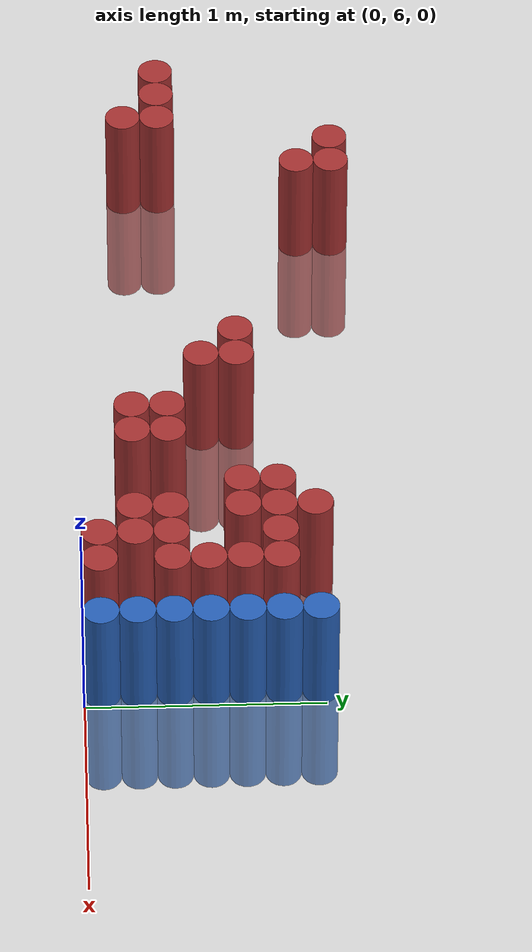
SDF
<sdf version="1.6">
 <world name="default">
  <model name="ground_plane">
   <static>1</static>
   <link name="link">
    <collision name="collision">
     <geometry><plane><normal>0 0 1</normal><size>100 100</size></plane></geometry>
     <surface><friction><ode><mu>100</mu><mu2>50</mu2></ode></friction></surface>
    </collision>
    <visual name="visual">
     <cast_shadows>0</cast_shadows>
     <geometry><plane><normal>0 0 1</normal><size>100 100</size></plane></geometry>
     <material>
      <script><uri>file://media/materials/scripts/gazebo.material</uri><name>Gazebo/Grey</name></script>
     </material>
    </visual>
   </link>
  </model>
  <model name="unit_cylinder_186">
   <static>1</static>
   <pose>-3.375000 6.375000 0.000000 0.000000 0.000000 0.000000</pose>
   <link name="link">
    <inertial>
     <mass>1</mass>
     <inertia><ixx>0.145833</ixx><ixy>0</ixy><ixz>0</ixz><iyy>0.145833</iyy><iyz>0</iyz><izz>0.125</izz></inertia>
    </inertial>
    <collision name="collision">
     <geometry><cylinder><radius>0.075000</radius><length>1</length></cylinder></geometry>
    </collision>
    <visual name="visual">
     <geometry><cylinder><radius>0.075000</radius><length>1</length></cylinder></geometry>
     <material>
      <ambient>0.648000 0.192000 0.192000 1</ambient>
      <diffuse>0.648000 0.192000 0.192000 1</diffuse>
     </material>
     <material>
      <script><name>Gazebo/Grey</name><uri>file://media/materials/scripts/gazebo.material</uri></script>
     </material>
    </visual>
    <sensor name="sensor_contact" type="contact"><contact><collision>collision</collision></contact></sensor>
   </link>
   <plugin filename="gz-sim-touchplugin-system" name="gz::sim::systems::TouchPlugin">
    <target>robot</target>
    <namespace>robot</namespace>
    <time>0.001</time>
    <enabled>true</enabled>
   </plugin>
  </model>
  <model name="unit_cylinder_189">
   <static>1</static>
   <pose>-3.225000 6.375000 0.000000 0.000000 0.000000 0.000000</pose>
   <link name="link">
    <inertial>
     <mass>1</mass>
     <inertia><ixx>0.145833</ixx><ixy>0</ixy><ixz>0</ixz><iyy>0.145833</iyy><iyz>0</iyz><izz>0.125</izz></inertia>
    </inertial>
    <collision name="collision">
     <geometry><cylinder><radius>0.075000</radius><length>1</length></cylinder></geometry>
    </collision>
    <visual name="visual">
     <geometry><cylinder><radius>0.075000</radius><length>1</length></cylinder></geometry>
     <material>
      <ambient>0.648000 0.192000 0.192000 1</ambient>
      <diffuse>0.648000 0.192000 0.192000 1</diffuse>
     </material>
     <material>
      <script><name>Gazebo/Grey</name><uri>file://media/materials/scripts/gazebo.material</uri></script>
     </material>
    </visual>
    <sensor name="sensor_contact" type="contact"><contact><collision>collision</collision></contact></sensor>
   </link>
   <plugin filename="gz-sim-touchplugin-system" name="gz::sim::systems::TouchPlugin">
    <target>robot</target>
    <namespace>robot</namespace>
    <time>0.001</time>
    <enabled>true</enabled>
   </plugin>
  </model>
  <model name="unit_cylinder_191">
   <static>1</static>
   <pose>-3.075000 6.225000 0.000000 0.000000 0.000000 0.000000</pose>
   <link name="link">
    <inertial>
     <mass>1</mass>
     <inertia><ixx>0.145833</ixx><ixy>0</ixy><ixz>0</ixz><iyy>0.145833</iyy><iyz>0</iyz><izz>0.125</izz></inertia>
    </inertial>
    <collision name="collision">
     <geometry><cylinder><radius>0.075000</radius><length>1</length></cylinder></geometry>
    </collision>
    <visual name="visual">
     <geometry><cylinder><radius>0.075000</radius><length>1</length></cylinder></geometry>
     <material>
      <ambient>0.648000 0.192000 0.192000 1</ambient>
      <diffuse>0.648000 0.192000 0.192000 1</diffuse>
     </material>
     <material>
      <script><name>Gazebo/Grey</name><uri>file://media/materials/scripts/gazebo.material</uri></script>
     </material>
    </visual>
    <sensor name="sensor_contact" type="contact"><contact><collision>collision</collision></contact></sensor>
   </link>
   <plugin filename="gz-sim-touchplugin-system" name="gz::sim::systems::TouchPlugin">
    <target>robot</target>
    <namespace>robot</namespace>
    <time>0.001</time>
    <enabled>true</enabled>
   </plugin>
  </model>
  <model name="unit_cylinder_192">
   <static>1</static>
   <pose>-3.075000 6.375000 0.000000 0.000000 0.000000 0.000000</pose>
   <link name="link">
    <inertial>
     <mass>1</mass>
     <inertia><ixx>0.145833</ixx><ixy>0</ixy><ixz>0</ixz><iyy>0.145833</iyy><iyz>0</iyz><izz>0.125</izz></inertia>
    </inertial>
    <collision name="collision">
     <geometry><cylinder><radius>0.075000</radius><length>1</length></cylinder></geometry>
    </collision>
    <visual name="visual">
     <geometry><cylinder><radius>0.075000</radius><length>1</length></cylinder></geometry>
     <material>
      <ambient>0.648000 0.192000 0.192000 1</ambient>
      <diffuse>0.648000 0.192000 0.192000 1</diffuse>
     </material>
     <material>
      <script><name>Gazebo/Grey</name><uri>file://media/materials/scripts/gazebo.material</uri></script>
     </material>
    </visual>
    <sensor name="sensor_contact" type="contact"><contact><collision>collision</collision></contact></sensor>
   </link>
   <plugin filename="gz-sim-touchplugin-system" name="gz::sim::systems::TouchPlugin">
    <target>robot</target>
    <namespace>robot</namespace>
    <time>0.001</time>
    <enabled>true</enabled>
   </plugin>
  </model>
  <model name="unit_cylinder_194">
   <static>1</static>
   <pose>-2.925000 7.125000 0.000000 0.000000 0.000000 0.000000</pose>
   <link name="link">
    <inertial>
     <mass>1</mass>
     <inertia><ixx>0.145833</ixx><ixy>0</ixy><ixz>0</ixz><iyy>0.145833</iyy><iyz>0</iyz><izz>0.125</izz></inertia>
    </inertial>
    <collision name="collision">
     <geometry><cylinder><radius>0.075000</radius><length>1</length></cylinder></geometry>
    </collision>
    <visual name="visual">
     <geometry><cylinder><radius>0.075000</radius><length>1</length></cylinder></geometry>
     <material>
      <ambient>0.648000 0.192000 0.192000 1</ambient>
      <diffuse>0.648000 0.192000 0.192000 1</diffuse>
     </material>
     <material>
      <script><name>Gazebo/Grey</name><uri>file://media/materials/scripts/gazebo.material</uri></script>
     </material>
    </visual>
    <sensor name="sensor_contact" type="contact"><contact><collision>collision</collision></contact></sensor>
   </link>
   <plugin filename="gz-sim-touchplugin-system" name="gz::sim::systems::TouchPlugin">
    <target>robot</target>
    <namespace>robot</namespace>
    <time>0.001</time>
    <enabled>true</enabled>
   </plugin>
  </model>
  <model name="unit_cylinder_195">
   <static>1</static>
   <pose>-2.775000 6.975000 0.000000 0.000000 0.000000 0.000000</pose>
   <link name="link">
    <inertial>
     <mass>1</mass>
     <inertia><ixx>0.145833</ixx><ixy>0</ixy><ixz>0</ixz><iyy>0.145833</iyy><iyz>0</iyz><izz>0.125</izz></inertia>
    </inertial>
    <collision name="collision">
     <geometry><cylinder><radius>0.075000</radius><length>1</length></cylinder></geometry>
    </collision>
    <visual name="visual">
     <geometry><cylinder><radius>0.075000</radius><length>1</length></cylinder></geometry>
     <material>
      <ambient>0.648000 0.192000 0.192000 1</ambient>
      <diffuse>0.648000 0.192000 0.192000 1</diffuse>
     </material>
     <material>
      <script><name>Gazebo/Grey</name><uri>file://media/materials/scripts/gazebo.material</uri></script>
     </material>
    </visual>
    <sensor name="sensor_contact" type="contact"><contact><collision>collision</collision></contact></sensor>
   </link>
   <plugin filename="gz-sim-touchplugin-system" name="gz::sim::systems::TouchPlugin">
    <target>robot</target>
    <namespace>robot</namespace>
    <time>0.001</time>
    <enabled>true</enabled>
   </plugin>
  </model>
  <model name="unit_cylinder_196">
   <static>1</static>
   <pose>-2.775000 7.125000 0.000000 0.000000 0.000000 0.000000</pose>
   <link name="link">
    <inertial>
     <mass>1</mass>
     <inertia><ixx>0.145833</ixx><ixy>0</ixy><ixz>0</ixz><iyy>0.145833</iyy><iyz>0</iyz><izz>0.125</izz></inertia>
    </inertial>
    <collision name="collision">
     <geometry><cylinder><radius>0.075000</radius><length>1</length></cylinder></geometry>
    </collision>
    <visual name="visual">
     <geometry><cylinder><radius>0.075000</radius><length>1</length></cylinder></geometry>
     <material>
      <ambient>0.648000 0.192000 0.192000 1</ambient>
      <diffuse>0.648000 0.192000 0.192000 1</diffuse>
     </material>
     <material>
      <script><name>Gazebo/Grey</name><uri>file://media/materials/scripts/gazebo.material</uri></script>
     </material>
    </visual>
    <sensor name="sensor_contact" type="contact"><contact><collision>collision</collision></contact></sensor>
   </link>
   <plugin filename="gz-sim-touchplugin-system" name="gz::sim::systems::TouchPlugin">
    <target>robot</target>
    <namespace>robot</namespace>
    <time>0.001</time>
    <enabled>true</enabled>
   </plugin>
  </model>
  <model name="unit_cylinder_217">
   <static>1</static>
   <pose>-1.725000 6.675000 0.000000 0.000000 0.000000 0.000000</pose>
   <link name="link">
    <inertial>
     <mass>1</mass>
     <inertia><ixx>0.145833</ixx><ixy>0</ixy><ixz>0</ixz><iyy>0.145833</iyy><iyz>0</iyz><izz>0.125</izz></inertia>
    </inertial>
    <collision name="collision">
     <geometry><cylinder><radius>0.075000</radius><length>1</length></cylinder></geometry>
    </collision>
    <visual name="visual">
     <geometry><cylinder><radius>0.075000</radius><length>1</length></cylinder></geometry>
     <material>
      <ambient>0.648000 0.192000 0.192000 1</ambient>
      <diffuse>0.648000 0.192000 0.192000 1</diffuse>
     </material>
     <material>
      <script><name>Gazebo/Grey</name><uri>file://media/materials/scripts/gazebo.material</uri></script>
     </material>
    </visual>
    <sensor name="sensor_contact" type="contact"><contact><collision>collision</collision></contact></sensor>
   </link>
   <plugin filename="gz-sim-touchplugin-system" name="gz::sim::systems::TouchPlugin">
    <target>robot</target>
    <namespace>robot</namespace>
    <time>0.001</time>
    <enabled>true</enabled>
   </plugin>
  </model>
  <model name="unit_cylinder_220">
   <static>1</static>
   <pose>-1.575000 6.525000 0.000000 0.000000 0.000000 0.000000</pose>
   <link name="link">
    <inertial>
     <mass>1</mass>
     <inertia><ixx>0.145833</ixx><ixy>0</ixy><ixz>0</ixz><iyy>0.145833</iyy><iyz>0</iyz><izz>0.125</izz></inertia>
    </inertial>
    <collision name="collision">
     <geometry><cylinder><radius>0.075000</radius><length>1</length></cylinder></geometry>
    </collision>
    <visual name="visual">
     <geometry><cylinder><radius>0.075000</radius><length>1</length></cylinder></geometry>
     <material>
      <ambient>0.648000 0.192000 0.192000 1</ambient>
      <diffuse>0.648000 0.192000 0.192000 1</diffuse>
     </material>
     <material>
      <script><name>Gazebo/Grey</name><uri>file://media/materials/scripts/gazebo.material</uri></script>
     </material>
    </visual>
    <sensor name="sensor_contact" type="contact"><contact><collision>collision</collision></contact></sensor>
   </link>
   <plugin filename="gz-sim-touchplugin-system" name="gz::sim::systems::TouchPlugin">
    <target>robot</target>
    <namespace>robot</namespace>
    <time>0.001</time>
    <enabled>true</enabled>
   </plugin>
  </model>
  <model name="unit_cylinder_221">
   <static>1</static>
   <pose>-1.575000 6.675000 0.000000 0.000000 0.000000 0.000000</pose>
   <link name="link">
    <inertial>
     <mass>1</mass>
     <inertia><ixx>0.145833</ixx><ixy>0</ixy><ixz>0</ixz><iyy>0.145833</iyy><iyz>0</iyz><izz>0.125</izz></inertia>
    </inertial>
    <collision name="collision">
     <geometry><cylinder><radius>0.075000</radius><length>1</length></cylinder></geometry>
    </collision>
    <visual name="visual">
     <geometry><cylinder><radius>0.075000</radius><length>1</length></cylinder></geometry>
     <material>
      <ambient>0.648000 0.192000 0.192000 1</ambient>
      <diffuse>0.648000 0.192000 0.192000 1</diffuse>
     </material>
     <material>
      <script><name>Gazebo/Grey</name><uri>file://media/materials/scripts/gazebo.material</uri></script>
     </material>
    </visual>
    <sensor name="sensor_contact" type="contact"><contact><collision>collision</collision></contact></sensor>
   </link>
   <plugin filename="gz-sim-touchplugin-system" name="gz::sim::systems::TouchPlugin">
    <target>robot</target>
    <namespace>robot</namespace>
    <time>0.001</time>
    <enabled>true</enabled>
   </plugin>
  </model>
  <model name="unit_cylinder_231">
   <static>1</static>
   <pose>-1.275000 6.225000 0.000000 0.000000 0.000000 0.000000</pose>
   <link name="link">
    <inertial>
     <mass>1</mass>
     <inertia><ixx>0.145833</ixx><ixy>0</ixy><ixz>0</ixz><iyy>0.145833</iyy><iyz>0</iyz><izz>0.125</izz></inertia>
    </inertial>
    <collision name="collision">
     <geometry><cylinder><radius>0.075000</radius><length>1</length></cylinder></geometry>
    </collision>
    <visual name="visual">
     <geometry><cylinder><radius>0.075000</radius><length>1</length></cylinder></geometry>
     <material>
      <ambient>0.648000 0.192000 0.192000 1</ambient>
      <diffuse>0.648000 0.192000 0.192000 1</diffuse>
     </material>
     <material>
      <script><name>Gazebo/Grey</name><uri>file://media/materials/scripts/gazebo.material</uri></script>
     </material>
    </visual>
    <sensor name="sensor_contact" type="contact"><contact><collision>collision</collision></contact></sensor>
   </link>
   <plugin filename="gz-sim-touchplugin-system" name="gz::sim::systems::TouchPlugin">
    <target>robot</target>
    <namespace>robot</namespace>
    <time>0.001</time>
    <enabled>true</enabled>
   </plugin>
  </model>
  <model name="unit_cylinder_232">
   <static>1</static>
   <pose>-1.275000 6.375000 0.000000 0.000000 0.000000 0.000000</pose>
   <link name="link">
    <inertial>
     <mass>1</mass>
     <inertia><ixx>0.145833</ixx><ixy>0</ixy><ixz>0</ixz><iyy>0.145833</iyy><iyz>0</iyz><izz>0.125</izz></inertia>
    </inertial>
    <collision name="collision">
     <geometry><cylinder><radius>0.075000</radius><length>1</length></cylinder></geometry>
    </collision>
    <visual name="visual">
     <geometry><cylinder><radius>0.075000</radius><length>1</length></cylinder></geometry>
     <material>
      <ambient>0.648000 0.192000 0.192000 1</ambient>
      <diffuse>0.648000 0.192000 0.192000 1</diffuse>
     </material>
     <material>
      <script><name>Gazebo/Grey</name><uri>file://media/materials/scripts/gazebo.material</uri></script>
     </material>
    </visual>
    <sensor name="sensor_contact" type="contact"><contact><collision>collision</collision></contact></sensor>
   </link>
   <plugin filename="gz-sim-touchplugin-system" name="gz::sim::systems::TouchPlugin">
    <target>robot</target>
    <namespace>robot</namespace>
    <time>0.001</time>
    <enabled>true</enabled>
   </plugin>
  </model>
  <model name="unit_cylinder_239">
   <static>1</static>
   <pose>-1.125000 6.225000 0.000000 0.000000 0.000000 0.000000</pose>
   <link name="link">
    <inertial>
     <mass>1</mass>
     <inertia><ixx>0.145833</ixx><ixy>0</ixy><ixz>0</ixz><iyy>0.145833</iyy><iyz>0</iyz><izz>0.125</izz></inertia>
    </inertial>
    <collision name="collision">
     <geometry><cylinder><radius>0.075000</radius><length>1</length></cylinder></geometry>
    </collision>
    <visual name="visual">
     <geometry><cylinder><radius>0.075000</radius><length>1</length></cylinder></geometry>
     <material>
      <ambient>0.648000 0.192000 0.192000 1</ambient>
      <diffuse>0.648000 0.192000 0.192000 1</diffuse>
     </material>
     <material>
      <script><name>Gazebo/Grey</name><uri>file://media/materials/scripts/gazebo.material</uri></script>
     </material>
    </visual>
    <sensor name="sensor_contact" type="contact"><contact><collision>collision</collision></contact></sensor>
   </link>
   <plugin filename="gz-sim-touchplugin-system" name="gz::sim::systems::TouchPlugin">
    <target>robot</target>
    <namespace>robot</namespace>
    <time>0.001</time>
    <enabled>true</enabled>
   </plugin>
  </model>
  <model name="unit_cylinder_240">
   <static>1</static>
   <pose>-1.125000 6.375000 0.000000 0.000000 0.000000 0.000000</pose>
   <link name="link">
    <inertial>
     <mass>1</mass>
     <inertia><ixx>0.145833</ixx><ixy>0</ixy><ixz>0</ixz><iyy>0.145833</iyy><iyz>0</iyz><izz>0.125</izz></inertia>
    </inertial>
    <collision name="collision">
     <geometry><cylinder><radius>0.075000</radius><length>1</length></cylinder></geometry>
    </collision>
    <visual name="visual">
     <geometry><cylinder><radius>0.075000</radius><length>1</length></cylinder></geometry>
     <material>
      <ambient>0.648000 0.192000 0.192000 1</ambient>
      <diffuse>0.648000 0.192000 0.192000 1</diffuse>
     </material>
     <material>
      <script><name>Gazebo/Grey</name><uri>file://media/materials/scripts/gazebo.material</uri></script>
     </material>
    </visual>
    <sensor name="sensor_contact" type="contact"><contact><collision>collision</collision></contact></sensor>
   </link>
   <plugin filename="gz-sim-touchplugin-system" name="gz::sim::systems::TouchPlugin">
    <target>robot</target>
    <namespace>robot</namespace>
    <time>0.001</time>
    <enabled>true</enabled>
   </plugin>
  </model>
  <model name="unit_cylinder_257">
   <static>1</static>
   <pose>-0.825000 6.675000 0.000000 0.000000 0.000000 0.000000</pose>
   <link name="link">
    <inertial>
     <mass>1</mass>
     <inertia><ixx>0.145833</ixx><ixy>0</ixy><ixz>0</ixz><iyy>0.145833</iyy><iyz>0</iyz><izz>0.125</izz></inertia>
    </inertial>
    <collision name="collision">
     <geometry><cylinder><radius>0.075000</radius><length>1</length></cylinder></geometry>
    </collision>
    <visual name="visual">
     <geometry><cylinder><radius>0.075000</radius><length>1</length></cylinder></geometry>
     <material>
      <ambient>0.648000 0.192000 0.192000 1</ambient>
      <diffuse>0.648000 0.192000 0.192000 1</diffuse>
     </material>
     <material>
      <script><name>Gazebo/Grey</name><uri>file://media/materials/scripts/gazebo.material</uri></script>
     </material>
    </visual>
    <sensor name="sensor_contact" type="contact"><contact><collision>collision</collision></contact></sensor>
   </link>
   <plugin filename="gz-sim-touchplugin-system" name="gz::sim::systems::TouchPlugin">
    <target>robot</target>
    <namespace>robot</namespace>
    <time>0.001</time>
    <enabled>true</enabled>
   </plugin>
  </model>
  <model name="unit_cylinder_258">
   <static>1</static>
   <pose>-0.825000 6.825000 0.000000 0.000000 0.000000 0.000000</pose>
   <link name="link">
    <inertial>
     <mass>1</mass>
     <inertia><ixx>0.145833</ixx><ixy>0</ixy><ixz>0</ixz><iyy>0.145833</iyy><iyz>0</iyz><izz>0.125</izz></inertia>
    </inertial>
    <collision name="collision">
     <geometry><cylinder><radius>0.075000</radius><length>1</length></cylinder></geometry>
    </collision>
    <visual name="visual">
     <geometry><cylinder><radius>0.075000</radius><length>1</length></cylinder></geometry>
     <material>
      <ambient>0.648000 0.192000 0.192000 1</ambient>
      <diffuse>0.648000 0.192000 0.192000 1</diffuse>
     </material>
     <material>
      <script><name>Gazebo/Grey</name><uri>file://media/materials/scripts/gazebo.material</uri></script>
     </material>
    </visual>
    <sensor name="sensor_contact" type="contact"><contact><collision>collision</collision></contact></sensor>
   </link>
   <plugin filename="gz-sim-touchplugin-system" name="gz::sim::systems::TouchPlugin">
    <target>robot</target>
    <namespace>robot</namespace>
    <time>0.001</time>
    <enabled>true</enabled>
   </plugin>
  </model>
  <model name="unit_cylinder_264">
   <static>1</static>
   <pose>-0.675000 6.225000 0.000000 0.000000 0.000000 0.000000</pose>
   <link name="link">
    <inertial>
     <mass>1</mass>
     <inertia><ixx>0.145833</ixx><ixy>0</ixy><ixz>0</ixz><iyy>0.145833</iyy><iyz>0</iyz><izz>0.125</izz></inertia>
    </inertial>
    <collision name="collision">
     <geometry><cylinder><radius>0.075000</radius><length>1</length></cylinder></geometry>
    </collision>
    <visual name="visual">
     <geometry><cylinder><radius>0.075000</radius><length>1</length></cylinder></geometry>
     <material>
      <ambient>0.648000 0.192000 0.192000 1</ambient>
      <diffuse>0.648000 0.192000 0.192000 1</diffuse>
     </material>
     <material>
      <script><name>Gazebo/Grey</name><uri>file://media/materials/scripts/gazebo.material</uri></script>
     </material>
    </visual>
    <sensor name="sensor_contact" type="contact"><contact><collision>collision</collision></contact></sensor>
   </link>
   <plugin filename="gz-sim-touchplugin-system" name="gz::sim::systems::TouchPlugin">
    <target>robot</target>
    <namespace>robot</namespace>
    <time>0.001</time>
    <enabled>true</enabled>
   </plugin>
  </model>
  <model name="unit_cylinder_265">
   <static>1</static>
   <pose>-0.675000 6.375000 0.000000 0.000000 0.000000 0.000000</pose>
   <link name="link">
    <inertial>
     <mass>1</mass>
     <inertia><ixx>0.145833</ixx><ixy>0</ixy><ixz>0</ixz><iyy>0.145833</iyy><iyz>0</iyz><izz>0.125</izz></inertia>
    </inertial>
    <collision name="collision">
     <geometry><cylinder><radius>0.075000</radius><length>1</length></cylinder></geometry>
    </collision>
    <visual name="visual">
     <geometry><cylinder><radius>0.075000</radius><length>1</length></cylinder></geometry>
     <material>
      <ambient>0.648000 0.192000 0.192000 1</ambient>
      <diffuse>0.648000 0.192000 0.192000 1</diffuse>
     </material>
     <material>
      <script><name>Gazebo/Grey</name><uri>file://media/materials/scripts/gazebo.material</uri></script>
     </material>
    </visual>
    <sensor name="sensor_contact" type="contact"><contact><collision>collision</collision></contact></sensor>
   </link>
   <plugin filename="gz-sim-touchplugin-system" name="gz::sim::systems::TouchPlugin">
    <target>robot</target>
    <namespace>robot</namespace>
    <time>0.001</time>
    <enabled>true</enabled>
   </plugin>
  </model>
  <model name="unit_cylinder_266">
   <static>1</static>
   <pose>-0.675000 6.675000 0.000000 0.000000 0.000000 0.000000</pose>
   <link name="link">
    <inertial>
     <mass>1</mass>
     <inertia><ixx>0.145833</ixx><ixy>0</ixy><ixz>0</ixz><iyy>0.145833</iyy><iyz>0</iyz><izz>0.125</izz></inertia>
    </inertial>
    <collision name="collision">
     <geometry><cylinder><radius>0.075000</radius><length>1</length></cylinder></geometry>
    </collision>
    <visual name="visual">
     <geometry><cylinder><radius>0.075000</radius><length>1</length></cylinder></geometry>
     <material>
      <ambient>0.648000 0.192000 0.192000 1</ambient>
      <diffuse>0.648000 0.192000 0.192000 1</diffuse>
     </material>
     <material>
      <script><name>Gazebo/Grey</name><uri>file://media/materials/scripts/gazebo.material</uri></script>
     </material>
    </visual>
    <sensor name="sensor_contact" type="contact"><contact><collision>collision</collision></contact></sensor>
   </link>
   <plugin filename="gz-sim-touchplugin-system" name="gz::sim::systems::TouchPlugin">
    <target>robot</target>
    <namespace>robot</namespace>
    <time>0.001</time>
    <enabled>true</enabled>
   </plugin>
  </model>
  <model name="unit_cylinder_267">
   <static>1</static>
   <pose>-0.675000 6.825000 0.000000 0.000000 0.000000 0.000000</pose>
   <link name="link">
    <inertial>
     <mass>1</mass>
     <inertia><ixx>0.145833</ixx><ixy>0</ixy><ixz>0</ixz><iyy>0.145833</iyy><iyz>0</iyz><izz>0.125</izz></inertia>
    </inertial>
    <collision name="collision">
     <geometry><cylinder><radius>0.075000</radius><length>1</length></cylinder></geometry>
    </collision>
    <visual name="visual">
     <geometry><cylinder><radius>0.075000</radius><length>1</length></cylinder></geometry>
     <material>
      <ambient>0.648000 0.192000 0.192000 1</ambient>
      <diffuse>0.648000 0.192000 0.192000 1</diffuse>
     </material>
     <material>
      <script><name>Gazebo/Grey</name><uri>file://media/materials/scripts/gazebo.material</uri></script>
     </material>
    </visual>
    <sensor name="sensor_contact" type="contact"><contact><collision>collision</collision></contact></sensor>
   </link>
   <plugin filename="gz-sim-touchplugin-system" name="gz::sim::systems::TouchPlugin">
    <target>robot</target>
    <namespace>robot</namespace>
    <time>0.001</time>
    <enabled>true</enabled>
   </plugin>
  </model>
  <model name="unit_cylinder_268">
   <static>1</static>
   <pose>-0.675000 6.975000 0.000000 0.000000 0.000000 0.000000</pose>
   <link name="link">
    <inertial>
     <mass>1</mass>
     <inertia><ixx>0.145833</ixx><ixy>0</ixy><ixz>0</ixz><iyy>0.145833</iyy><iyz>0</iyz><izz>0.125</izz></inertia>
    </inertial>
    <collision name="collision">
     <geometry><cylinder><radius>0.075000</radius><length>1</length></cylinder></geometry>
    </collision>
    <visual name="visual">
     <geometry><cylinder><radius>0.075000</radius><length>1</length></cylinder></geometry>
     <material>
      <ambient>0.648000 0.192000 0.192000 1</ambient>
      <diffuse>0.648000 0.192000 0.192000 1</diffuse>
     </material>
     <material>
      <script><name>Gazebo/Grey</name><uri>file://media/materials/scripts/gazebo.material</uri></script>
     </material>
    </visual>
    <sensor name="sensor_contact" type="contact"><contact><collision>collision</collision></contact></sensor>
   </link>
   <plugin filename="gz-sim-touchplugin-system" name="gz::sim::systems::TouchPlugin">
    <target>robot</target>
    <namespace>robot</namespace>
    <time>0.001</time>
    <enabled>true</enabled>
   </plugin>
  </model>
  <model name="unit_cylinder_277">
   <static>1</static>
   <pose>-0.525000 6.075000 0.000000 0.000000 0.000000 0.000000</pose>
   <link name="link">
    <inertial>
     <mass>1</mass>
     <inertia><ixx>0.145833</ixx><ixy>0</ixy><ixz>0</ixz><iyy>0.145833</iyy><iyz>0</iyz><izz>0.125</izz></inertia>
    </inertial>
    <collision name="collision">
     <geometry><cylinder><radius>0.075000</radius><length>1</length></cylinder></geometry>
    </collision>
    <visual name="visual">
     <geometry><cylinder><radius>0.075000</radius><length>1</length></cylinder></geometry>
     <material>
      <ambient>0.648000 0.192000 0.192000 1</ambient>
      <diffuse>0.648000 0.192000 0.192000 1</diffuse>
     </material>
     <material>
      <script><name>Gazebo/Grey</name><uri>file://media/materials/scripts/gazebo.material</uri></script>
     </material>
    </visual>
    <sensor name="sensor_contact" type="contact"><contact><collision>collision</collision></contact></sensor>
   </link>
   <plugin filename="gz-sim-touchplugin-system" name="gz::sim::systems::TouchPlugin">
    <target>robot</target>
    <namespace>robot</namespace>
    <time>0.001</time>
    <enabled>true</enabled>
   </plugin>
  </model>
  <model name="unit_cylinder_278">
   <static>1</static>
   <pose>-0.525000 6.225000 0.000000 0.000000 0.000000 0.000000</pose>
   <link name="link">
    <inertial>
     <mass>1</mass>
     <inertia><ixx>0.145833</ixx><ixy>0</ixy><ixz>0</ixz><iyy>0.145833</iyy><iyz>0</iyz><izz>0.125</izz></inertia>
    </inertial>
    <collision name="collision">
     <geometry><cylinder><radius>0.075000</radius><length>1</length></cylinder></geometry>
    </collision>
    <visual name="visual">
     <geometry><cylinder><radius>0.075000</radius><length>1</length></cylinder></geometry>
     <material>
      <ambient>0.648000 0.192000 0.192000 1</ambient>
      <diffuse>0.648000 0.192000 0.192000 1</diffuse>
     </material>
     <material>
      <script><name>Gazebo/Grey</name><uri>file://media/materials/scripts/gazebo.material</uri></script>
     </material>
    </visual>
    <sensor name="sensor_contact" type="contact"><contact><collision>collision</collision></contact></sensor>
   </link>
   <plugin filename="gz-sim-touchplugin-system" name="gz::sim::systems::TouchPlugin">
    <target>robot</target>
    <namespace>robot</namespace>
    <time>0.001</time>
    <enabled>true</enabled>
   </plugin>
  </model>
  <model name="unit_cylinder_279">
   <static>1</static>
   <pose>-0.525000 6.375000 0.000000 0.000000 0.000000 0.000000</pose>
   <link name="link">
    <inertial>
     <mass>1</mass>
     <inertia><ixx>0.145833</ixx><ixy>0</ixy><ixz>0</ixz><iyy>0.145833</iyy><iyz>0</iyz><izz>0.125</izz></inertia>
    </inertial>
    <collision name="collision">
     <geometry><cylinder><radius>0.075000</radius><length>1</length></cylinder></geometry>
    </collision>
    <visual name="visual">
     <geometry><cylinder><radius>0.075000</radius><length>1</length></cylinder></geometry>
     <material>
      <ambient>0.648000 0.192000 0.192000 1</ambient>
      <diffuse>0.648000 0.192000 0.192000 1</diffuse>
     </material>
     <material>
      <script><name>Gazebo/Grey</name><uri>file://media/materials/scripts/gazebo.material</uri></script>
     </material>
    </visual>
    <sensor name="sensor_contact" type="contact"><contact><collision>collision</collision></contact></sensor>
   </link>
   <plugin filename="gz-sim-touchplugin-system" name="gz::sim::systems::TouchPlugin">
    <target>robot</target>
    <namespace>robot</namespace>
    <time>0.001</time>
    <enabled>true</enabled>
   </plugin>
  </model>
  <model name="unit_cylinder_280">
   <static>1</static>
   <pose>-0.525000 6.825000 0.000000 0.000000 0.000000 0.000000</pose>
   <link name="link">
    <inertial>
     <mass>1</mass>
     <inertia><ixx>0.145833</ixx><ixy>0</ixy><ixz>0</ixz><iyy>0.145833</iyy><iyz>0</iyz><izz>0.125</izz></inertia>
    </inertial>
    <collision name="collision">
     <geometry><cylinder><radius>0.075000</radius><length>1</length></cylinder></geometry>
    </collision>
    <visual name="visual">
     <geometry><cylinder><radius>0.075000</radius><length>1</length></cylinder></geometry>
     <material>
      <ambient>0.648000 0.192000 0.192000 1</ambient>
      <diffuse>0.648000 0.192000 0.192000 1</diffuse>
     </material>
     <material>
      <script><name>Gazebo/Grey</name><uri>file://media/materials/scripts/gazebo.material</uri></script>
     </material>
    </visual>
    <sensor name="sensor_contact" type="contact"><contact><collision>collision</collision></contact></sensor>
   </link>
   <plugin filename="gz-sim-touchplugin-system" name="gz::sim::systems::TouchPlugin">
    <target>robot</target>
    <namespace>robot</namespace>
    <time>0.001</time>
    <enabled>true</enabled>
   </plugin>
  </model>
  <model name="unit_cylinder_291">
   <static>1</static>
   <pose>-0.375000 6.075000 0.000000 0.000000 0.000000 0.000000</pose>
   <link name="link">
    <inertial>
     <mass>1</mass>
     <inertia><ixx>0.145833</ixx><ixy>0</ixy><ixz>0</ixz><iyy>0.145833</iyy><iyz>0</iyz><izz>0.125</izz></inertia>
    </inertial>
    <collision name="collision">
     <geometry><cylinder><radius>0.075000</radius><length>1</length></cylinder></geometry>
    </collision>
    <visual name="visual">
     <geometry><cylinder><radius>0.075000</radius><length>1</length></cylinder></geometry>
     <material>
      <ambient>0.648000 0.192000 0.192000 1</ambient>
      <diffuse>0.648000 0.192000 0.192000 1</diffuse>
     </material>
     <material>
      <script><name>Gazebo/Grey</name><uri>file://media/materials/scripts/gazebo.material</uri></script>
     </material>
    </visual>
    <sensor name="sensor_contact" type="contact"><contact><collision>collision</collision></contact></sensor>
   </link>
   <plugin filename="gz-sim-touchplugin-system" name="gz::sim::systems::TouchPlugin">
    <target>robot</target>
    <namespace>robot</namespace>
    <time>0.001</time>
    <enabled>true</enabled>
   </plugin>
  </model>
  <model name="unit_cylinder_292">
   <static>1</static>
   <pose>-0.375000 6.375000 0.000000 0.000000 0.000000 0.000000</pose>
   <link name="link">
    <inertial>
     <mass>1</mass>
     <inertia><ixx>0.145833</ixx><ixy>0</ixy><ixz>0</ixz><iyy>0.145833</iyy><iyz>0</iyz><izz>0.125</izz></inertia>
    </inertial>
    <collision name="collision">
     <geometry><cylinder><radius>0.075000</radius><length>1</length></cylinder></geometry>
    </collision>
    <visual name="visual">
     <geometry><cylinder><radius>0.075000</radius><length>1</length></cylinder></geometry>
     <material>
      <ambient>0.648000 0.192000 0.192000 1</ambient>
      <diffuse>0.648000 0.192000 0.192000 1</diffuse>
     </material>
     <material>
      <script><name>Gazebo/Grey</name><uri>file://media/materials/scripts/gazebo.material</uri></script>
     </material>
    </visual>
    <sensor name="sensor_contact" type="contact"><contact><collision>collision</collision></contact></sensor>
   </link>
   <plugin filename="gz-sim-touchplugin-system" name="gz::sim::systems::TouchPlugin">
    <target>robot</target>
    <namespace>robot</namespace>
    <time>0.001</time>
    <enabled>true</enabled>
   </plugin>
  </model>
  <model name="unit_cylinder_293">
   <static>1</static>
   <pose>-0.375000 6.525000 0.000000 0.000000 0.000000 0.000000</pose>
   <link name="link">
    <inertial>
     <mass>1</mass>
     <inertia><ixx>0.145833</ixx><ixy>0</ixy><ixz>0</ixz><iyy>0.145833</iyy><iyz>0</iyz><izz>0.125</izz></inertia>
    </inertial>
    <collision name="collision">
     <geometry><cylinder><radius>0.075000</radius><length>1</length></cylinder></geometry>
    </collision>
    <visual name="visual">
     <geometry><cylinder><radius>0.075000</radius><length>1</length></cylinder></geometry>
     <material>
      <ambient>0.648000 0.192000 0.192000 1</ambient>
      <diffuse>0.648000 0.192000 0.192000 1</diffuse>
     </material>
     <material>
      <script><name>Gazebo/Grey</name><uri>file://media/materials/scripts/gazebo.material</uri></script>
     </material>
    </visual>
    <sensor name="sensor_contact" type="contact"><contact><collision>collision</collision></contact></sensor>
   </link>
   <plugin filename="gz-sim-touchplugin-system" name="gz::sim::systems::TouchPlugin">
    <target>robot</target>
    <namespace>robot</namespace>
    <time>0.001</time>
    <enabled>true</enabled>
   </plugin>
  </model>
  <model name="unit_cylinder_294">
   <static>1</static>
   <pose>-0.375000 6.675000 0.000000 0.000000 0.000000 0.000000</pose>
   <link name="link">
    <inertial>
     <mass>1</mass>
     <inertia><ixx>0.145833</ixx><ixy>0</ixy><ixz>0</ixz><iyy>0.145833</iyy><iyz>0</iyz><izz>0.125</izz></inertia>
    </inertial>
    <collision name="collision">
     <geometry><cylinder><radius>0.075000</radius><length>1</length></cylinder></geometry>
    </collision>
    <visual name="visual">
     <geometry><cylinder><radius>0.075000</radius><length>1</length></cylinder></geometry>
     <material>
      <ambient>0.648000 0.192000 0.192000 1</ambient>
      <diffuse>0.648000 0.192000 0.192000 1</diffuse>
     </material>
     <material>
      <script><name>Gazebo/Grey</name><uri>file://media/materials/scripts/gazebo.material</uri></script>
     </material>
    </visual>
    <sensor name="sensor_contact" type="contact"><contact><collision>collision</collision></contact></sensor>
   </link>
   <plugin filename="gz-sim-touchplugin-system" name="gz::sim::systems::TouchPlugin">
    <target>robot</target>
    <namespace>robot</namespace>
    <time>0.001</time>
    <enabled>true</enabled>
   </plugin>
  </model>
  <model name="unit_cylinder_295">
   <static>1</static>
   <pose>-0.375000 6.825000 0.000000 0.000000 0.000000 0.000000</pose>
   <link name="link">
    <inertial>
     <mass>1</mass>
     <inertia><ixx>0.145833</ixx><ixy>0</ixy><ixz>0</ixz><iyy>0.145833</iyy><iyz>0</iyz><izz>0.125</izz></inertia>
    </inertial>
    <collision name="collision">
     <geometry><cylinder><radius>0.075000</radius><length>1</length></cylinder></geometry>
    </collision>
    <visual name="visual">
     <geometry><cylinder><radius>0.075000</radius><length>1</length></cylinder></geometry>
     <material>
      <ambient>0.648000 0.192000 0.192000 1</ambient>
      <diffuse>0.648000 0.192000 0.192000 1</diffuse>
     </material>
     <material>
      <script><name>Gazebo/Grey</name><uri>file://media/materials/scripts/gazebo.material</uri></script>
     </material>
    </visual>
    <sensor name="sensor_contact" type="contact"><contact><collision>collision</collision></contact></sensor>
   </link>
   <plugin filename="gz-sim-touchplugin-system" name="gz::sim::systems::TouchPlugin">
    <target>robot</target>
    <namespace>robot</namespace>
    <time>0.001</time>
    <enabled>true</enabled>
   </plugin>
  </model>
  <model name="unit_cylinder_312">
   <static>1</static>
   <pose>-0.075000 6.075000 0.000000 0.000000 0.000000 0.000000</pose>
   <link name="link">
    <inertial>
     <mass>1</mass>
     <inertia><ixx>0.145833</ixx><ixy>0</ixy><ixz>0</ixz><iyy>0.145833</iyy><iyz>0</iyz><izz>0.125</izz></inertia>
    </inertial>
    <collision name="collision">
     <geometry><cylinder><radius>0.075000</radius><length>1</length></cylinder></geometry>
    </collision>
    <visual name="visual">
     <geometry><cylinder><radius>0.075000</radius><length>1</length></cylinder></geometry>
     <material>
      <ambient>0.152000 0.379000 0.720000 1</ambient>
      <diffuse>0.152000 0.379000 0.720000 1</diffuse>
     </material>
     <material>
      <script><name>Gazebo/Grey</name><uri>file://media/materials/scripts/gazebo.material</uri></script>
     </material>
    </visual>
    <sensor name="sensor_contact" type="contact"><contact><collision>collision</collision></contact></sensor>
   </link>
   <plugin filename="gz-sim-touchplugin-system" name="gz::sim::systems::TouchPlugin">
    <target>robot</target>
    <namespace>robot</namespace>
    <time>0.001</time>
    <enabled>true</enabled>
   </plugin>
  </model>
  <model name="unit_cylinder_313">
   <static>1</static>
   <pose>-0.075000 6.225000 0.000000 0.000000 0.000000 0.000000</pose>
   <link name="link">
    <inertial>
     <mass>1</mass>
     <inertia><ixx>0.145833</ixx><ixy>0</ixy><ixz>0</ixz><iyy>0.145833</iyy><iyz>0</iyz><izz>0.125</izz></inertia>
    </inertial>
    <collision name="collision">
     <geometry><cylinder><radius>0.075000</radius><length>1</length></cylinder></geometry>
    </collision>
    <visual name="visual">
     <geometry><cylinder><radius>0.075000</radius><length>1</length></cylinder></geometry>
     <material>
      <ambient>0.152000 0.379000 0.720000 1</ambient>
      <diffuse>0.152000 0.379000 0.720000 1</diffuse>
     </material>
     <material>
      <script><name>Gazebo/Grey</name><uri>file://media/materials/scripts/gazebo.material</uri></script>
     </material>
    </visual>
    <sensor name="sensor_contact" type="contact"><contact><collision>collision</collision></contact></sensor>
   </link>
   <plugin filename="gz-sim-touchplugin-system" name="gz::sim::systems::TouchPlugin">
    <target>robot</target>
    <namespace>robot</namespace>
    <time>0.001</time>
    <enabled>true</enabled>
   </plugin>
  </model>
  <model name="unit_cylinder_314">
   <static>1</static>
   <pose>-0.075000 6.375000 0.000000 0.000000 0.000000 0.000000</pose>
   <link name="link">
    <inertial>
     <mass>1</mass>
     <inertia><ixx>0.145833</ixx><ixy>0</ixy><ixz>0</ixz><iyy>0.145833</iyy><iyz>0</iyz><izz>0.125</izz></inertia>
    </inertial>
    <collision name="collision">
     <geometry><cylinder><radius>0.075000</radius><length>1</length></cylinder></geometry>
    </collision>
    <visual name="visual">
     <geometry><cylinder><radius>0.075000</radius><length>1</length></cylinder></geometry>
     <material>
      <ambient>0.152000 0.379000 0.720000 1</ambient>
      <diffuse>0.152000 0.379000 0.720000 1</diffuse>
     </material>
     <material>
      <script><name>Gazebo/Grey</name><uri>file://media/materials/scripts/gazebo.material</uri></script>
     </material>
    </visual>
    <sensor name="sensor_contact" type="contact"><contact><collision>collision</collision></contact></sensor>
   </link>
   <plugin filename="gz-sim-touchplugin-system" name="gz::sim::systems::TouchPlugin">
    <target>robot</target>
    <namespace>robot</namespace>
    <time>0.001</time>
    <enabled>true</enabled>
   </plugin>
  </model>
  <model name="unit_cylinder_315">
   <static>1</static>
   <pose>-0.075000 6.525000 0.000000 0.000000 0.000000 0.000000</pose>
   <link name="link">
    <inertial>
     <mass>1</mass>
     <inertia><ixx>0.145833</ixx><ixy>0</ixy><ixz>0</ixz><iyy>0.145833</iyy><iyz>0</iyz><izz>0.125</izz></inertia>
    </inertial>
    <collision name="collision">
     <geometry><cylinder><radius>0.075000</radius><length>1</length></cylinder></geometry>
    </collision>
    <visual name="visual">
     <geometry><cylinder><radius>0.075000</radius><length>1</length></cylinder></geometry>
     <material>
      <ambient>0.152000 0.379000 0.720000 1</ambient>
      <diffuse>0.152000 0.379000 0.720000 1</diffuse>
     </material>
     <material>
      <script><name>Gazebo/Grey</name><uri>file://media/materials/scripts/gazebo.material</uri></script>
     </material>
    </visual>
    <sensor name="sensor_contact" type="contact"><contact><collision>collision</collision></contact></sensor>
   </link>
   <plugin filename="gz-sim-touchplugin-system" name="gz::sim::systems::TouchPlugin">
    <target>robot</target>
    <namespace>robot</namespace>
    <time>0.001</time>
    <enabled>true</enabled>
   </plugin>
  </model>
  <model name="unit_cylinder_316">
   <static>1</static>
   <pose>-0.075000 6.675000 0.000000 0.000000 0.000000 0.000000</pose>
   <link name="link">
    <inertial>
     <mass>1</mass>
     <inertia><ixx>0.145833</ixx><ixy>0</ixy><ixz>0</ixz><iyy>0.145833</iyy><iyz>0</iyz><izz>0.125</izz></inertia>
    </inertial>
    <collision name="collision">
     <geometry><cylinder><radius>0.075000</radius><length>1</length></cylinder></geometry>
    </collision>
    <visual name="visual">
     <geometry><cylinder><radius>0.075000</radius><length>1</length></cylinder></geometry>
     <material>
      <ambient>0.152000 0.379000 0.720000 1</ambient>
      <diffuse>0.152000 0.379000 0.720000 1</diffuse>
     </material>
     <material>
      <script><name>Gazebo/Grey</name><uri>file://media/materials/scripts/gazebo.material</uri></script>
     </material>
    </visual>
    <sensor name="sensor_contact" type="contact"><contact><collision>collision</collision></contact></sensor>
   </link>
   <plugin filename="gz-sim-touchplugin-system" name="gz::sim::systems::TouchPlugin">
    <target>robot</target>
    <namespace>robot</namespace>
    <time>0.001</time>
    <enabled>true</enabled>
   </plugin>
  </model>
  <model name="unit_cylinder_317">
   <static>1</static>
   <pose>-0.075000 6.825000 0.000000 0.000000 0.000000 0.000000</pose>
   <link name="link">
    <inertial>
     <mass>1</mass>
     <inertia><ixx>0.145833</ixx><ixy>0</ixy><ixz>0</ixz><iyy>0.145833</iyy><iyz>0</iyz><izz>0.125</izz></inertia>
    </inertial>
    <collision name="collision">
     <geometry><cylinder><radius>0.075000</radius><length>1</length></cylinder></geometry>
    </collision>
    <visual name="visual">
     <geometry><cylinder><radius>0.075000</radius><length>1</length></cylinder></geometry>
     <material>
      <ambient>0.152000 0.379000 0.720000 1</ambient>
      <diffuse>0.152000 0.379000 0.720000 1</diffuse>
     </material>
     <material>
      <script><name>Gazebo/Grey</name><uri>file://media/materials/scripts/gazebo.material</uri></script>
     </material>
    </visual>
    <sensor name="sensor_contact" type="contact"><contact><collision>collision</collision></contact></sensor>
   </link>
   <plugin filename="gz-sim-touchplugin-system" name="gz::sim::systems::TouchPlugin">
    <target>robot</target>
    <namespace>robot</namespace>
    <time>0.001</time>
    <enabled>true</enabled>
   </plugin>
  </model>
  <model name="unit_cylinder_318">
   <static>1</static>
   <pose>-0.075000 6.975000 0.000000 0.000000 0.000000 0.000000</pose>
   <link name="link">
    <inertial>
     <mass>1</mass>
     <inertia><ixx>0.145833</ixx><ixy>0</ixy><ixz>0</ixz><iyy>0.145833</iyy><iyz>0</iyz><izz>0.125</izz></inertia>
    </inertial>
    <collision name="collision">
     <geometry><cylinder><radius>0.075000</radius><length>1</length></cylinder></geometry>
    </collision>
    <visual name="visual">
     <geometry><cylinder><radius>0.075000</radius><length>1</length></cylinder></geometry>
     <material>
      <ambient>0.152000 0.379000 0.720000 1</ambient>
      <diffuse>0.152000 0.379000 0.720000 1</diffuse>
     </material>
     <material>
      <script><name>Gazebo/Grey</name><uri>file://media/materials/scripts/gazebo.material</uri></script>
     </material>
    </visual>
    <sensor name="sensor_contact" type="contact"><contact><collision>collision</collision></contact></sensor>
   </link>
   <plugin filename="gz-sim-touchplugin-system" name="gz::sim::systems::TouchPlugin">
    <target>robot</target>
    <namespace>robot</namespace>
    <time>0.001</time>
    <enabled>true</enabled>
   </plugin>
  </model>
 </world>
</sdf>
